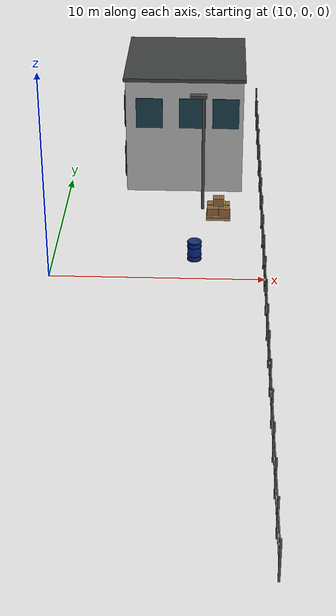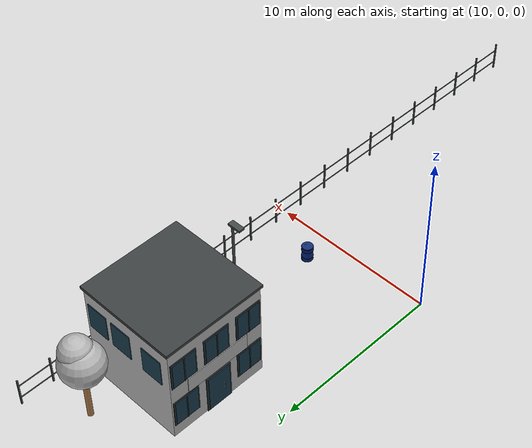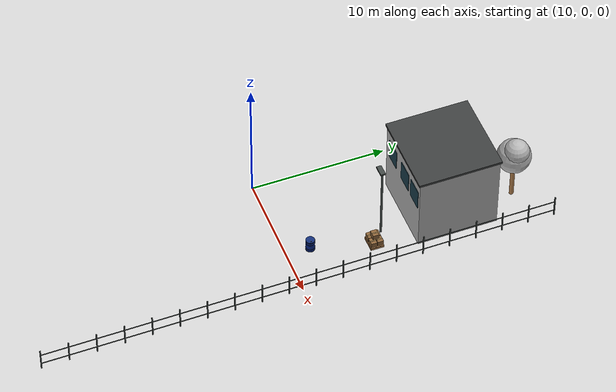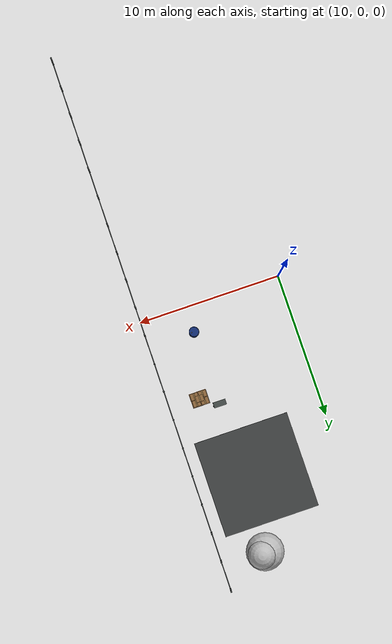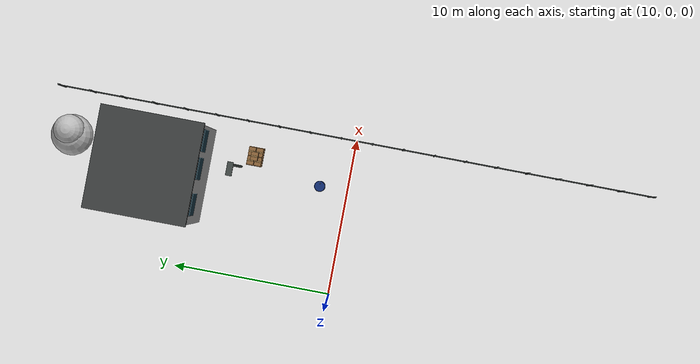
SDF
<sdf version="1.5">
 <world name="default">
  <include><uri>model://sun</uri></include>
  <model name="blue_drum_rear">
   <static>true</static>
   <pose>16.7 1.8 0.003 0 0 0</pose>
   <link name="structure">
    <visual name="drum_body">
     <pose>0 0 0.48 0 0 0</pose>
     <geometry><cylinder><radius>0.32</radius><length>0.94</length></cylinder></geometry>
     <material>
      <ambient>0.03 0.15 0.53 1</ambient>
      <diffuse>0.03 0.15 0.53 1</diffuse>
      <specular>0.04 0.04 0.04 1</specular>
     </material>
    </visual>
    <collision name="drum_body_collision">
     <pose>0 0 0.48 0 0 0</pose>
     <geometry><cylinder><radius>0.32</radius><length>0.94</length></cylinder></geometry>
     <surface><friction><ode><mu>1.0</mu><mu2>1.0</mu2></ode></friction></surface>
    </collision>
    <visual name="drum_ring_0">
     <pose>0 0 0.04 0 0 0</pose>
     <geometry><cylinder><radius>0.342</radius><length>0.026</length></cylinder></geometry>
     <material>
      <ambient>0.1 0.19 0.4 1</ambient>
      <diffuse>0.1 0.19 0.4 1</diffuse>
      <specular>0.04 0.04 0.04 1</specular>
     </material>
    </visual>
    <visual name="drum_ring_1">
     <pose>0 0 0.27 0 0 0</pose>
     <geometry><cylinder><radius>0.342</radius><length>0.026</length></cylinder></geometry>
     <material>
      <ambient>0.1 0.19 0.4 1</ambient>
      <diffuse>0.1 0.19 0.4 1</diffuse>
      <specular>0.04 0.04 0.04 1</specular>
     </material>
    </visual>
    <visual name="drum_ring_2">
     <pose>0 0 0.72 0 0 0</pose>
     <geometry><cylinder><radius>0.342</radius><length>0.026</length></cylinder></geometry>
     <material>
      <ambient>0.1 0.19 0.4 1</ambient>
      <diffuse>0.1 0.19 0.4 1</diffuse>
      <specular>0.04 0.04 0.04 1</specular>
     </material>
    </visual>
    <visual name="drum_ring_3">
     <pose>0 0 0.94 0 0 0</pose>
     <geometry><cylinder><radius>0.342</radius><length>0.026</length></cylinder></geometry>
     <material>
      <ambient>0.1 0.19 0.4 1</ambient>
      <diffuse>0.1 0.19 0.4 1</diffuse>
      <specular>0.04 0.04 0.04 1</specular>
     </material>
    </visual>
    <visual name="drum_lid">
     <pose>0 0 0.971 0 0 0</pose>
     <geometry><cylinder><radius>0.32</radius><length>0.035</length></cylinder></geometry>
     <material>
      <ambient>0.07 0.18 0.46 1</ambient>
      <diffuse>0.07 0.18 0.46 1</diffuse>
      <specular>0.04 0.04 0.04 1</specular>
     </material>
    </visual>
    <visual name="lid_bung">
     <pose>0.17 0 0.997 0 0 0</pose>
     <geometry><cylinder><radius>0.043</radius><length>0.018</length></cylinder></geometry>
     <material>
      <ambient>0.39 0.4 0.4 1</ambient>
      <diffuse>0.39 0.4 0.4 1</diffuse>
      <specular>0.04 0.04 0.04 1</specular>
     </material>
    </visual>
   </link>
  </model>
  <model name="park_office">
   <static>true</static>
   <pose>16 12 0.003 0 0 0</pose>
   <link name="structure">
    <visual name="office_shell">
     <pose>0 0 3.05 0 0 0</pose>
     <geometry><box><size>6 6 6.1</size></box></geometry>
     <material>
      <script>
       <uri>file:///home/fxxk/px4_agent/scene/materials/scripts</uri>
       <uri>file:///home/fxxk/px4_agent/scene/materials/textures</uri>
       <name>Yard/concrete</name>
      </script>
     </material>
    </visual>
    <collision name="office_shell_collision">
     <pose>0 0 3.05 0 0 0</pose>
     <geometry><box><size>6 6 6.1</size></box></geometry>
     <surface><friction><ode><mu>1.0</mu><mu2>1.0</mu2></ode></friction></surface>
    </collision>
    <visual name="office_roof">
     <pose>0 0 6.19 0 0 0</pose>
     <geometry><box><size>6.2 6.2 0.18</size></box></geometry>
     <material>
      <ambient>0.24 0.25 0.25 1</ambient>
      <diffuse>0.24 0.25 0.25 1</diffuse>
      <specular>0.04 0.04 0.04 1</specular>
     </material>
    </visual>
    <collision name="office_roof_collision">
     <pose>0 0 6.19 0 0 0</pose>
     <geometry><box><size>6.2 6.2 0.18</size></box></geometry>
     <surface><friction><ode><mu>1.0</mu><mu2>1.0</mu2></ode></friction></surface>
    </collision>
    <visual name="front_frame_0_0">
     <pose>-3.025 -2.1 1.65 0 0 0</pose>
     <geometry><box><size>0.045 1.62 1.72</size></box></geometry>
     <material>
      <ambient>0.18 0.2 0.21 1</ambient>
      <diffuse>0.18 0.2 0.21 1</diffuse>
      <specular>0.04 0.04 0.04 1</specular>
     </material>
    </visual>
    <visual name="front_glass_0_0">
     <pose>-3.056 -2.1 1.65 0 0 0</pose>
     <geometry><box><size>0.05 1.44 1.54</size></box></geometry>
     <material>
      <ambient>0.1 0.24 0.3 1</ambient>
      <diffuse>0.1 0.24 0.3 1</diffuse>
      <specular>0.04 0.04 0.04 1</specular>
     </material>
    </visual>
    <visual name="window_mullion_0_0">
     <pose>-3.086 -2.1 1.65 0 0 0</pose>
     <geometry><box><size>0.055 0.06 1.58</size></box></geometry>
     <material>
      <ambient>0.18 0.2 0.21 1</ambient>
      <diffuse>0.18 0.2 0.21 1</diffuse>
      <specular>0.04 0.04 0.04 1</specular>
     </material>
    </visual>
    <visual name="front_frame_0_2">
     <pose>-3.025 2.1 1.65 0 0 0</pose>
     <geometry><box><size>0.045 1.62 1.72</size></box></geometry>
     <material>
      <ambient>0.18 0.2 0.21 1</ambient>
      <diffuse>0.18 0.2 0.21 1</diffuse>
      <specular>0.04 0.04 0.04 1</specular>
     </material>
    </visual>
    <visual name="front_glass_0_2">
     <pose>-3.056 2.1 1.65 0 0 0</pose>
     <geometry><box><size>0.05 1.44 1.54</size></box></geometry>
     <material>
      <ambient>0.1 0.24 0.3 1</ambient>
      <diffuse>0.1 0.24 0.3 1</diffuse>
      <specular>0.04 0.04 0.04 1</specular>
     </material>
    </visual>
    <visual name="window_mullion_0_2">
     <pose>-3.086 2.1 1.65 0 0 0</pose>
     <geometry><box><size>0.055 0.06 1.58</size></box></geometry>
     <material>
      <ambient>0.18 0.2 0.21 1</ambient>
      <diffuse>0.18 0.2 0.21 1</diffuse>
      <specular>0.04 0.04 0.04 1</specular>
     </material>
    </visual>
    <visual name="front_frame_1_0">
     <pose>-3.025 -2.1 4.45 0 0 0</pose>
     <geometry><box><size>0.045 1.62 1.72</size></box></geometry>
     <material>
      <ambient>0.18 0.2 0.21 1</ambient>
      <diffuse>0.18 0.2 0.21 1</diffuse>
      <specular>0.04 0.04 0.04 1</specular>
     </material>
    </visual>
    <visual name="front_glass_1_0">
     <pose>-3.056 -2.1 4.45 0 0 0</pose>
     <geometry><box><size>0.05 1.44 1.54</size></box></geometry>
     <material>
      <ambient>0.1 0.24 0.3 1</ambient>
      <diffuse>0.1 0.24 0.3 1</diffuse>
      <specular>0.04 0.04 0.04 1</specular>
     </material>
    </visual>
    <visual name="window_mullion_1_0">
     <pose>-3.086 -2.1 4.45 0 0 0</pose>
     <geometry><box><size>0.055 0.06 1.58</size></box></geometry>
     <material>
      <ambient>0.18 0.2 0.21 1</ambient>
      <diffuse>0.18 0.2 0.21 1</diffuse>
      <specular>0.04 0.04 0.04 1</specular>
     </material>
    </visual>
    <visual name="front_frame_1_1">
     <pose>-3.025 0 4.45 0 0 0</pose>
     <geometry><box><size>0.045 1.62 1.72</size></box></geometry>
     <material>
      <ambient>0.18 0.2 0.21 1</ambient>
      <diffuse>0.18 0.2 0.21 1</diffuse>
      <specular>0.04 0.04 0.04 1</specular>
     </material>
    </visual>
    <visual name="front_glass_1_1">
     <pose>-3.056 0 4.45 0 0 0</pose>
     <geometry><box><size>0.05 1.44 1.54</size></box></geometry>
     <material>
      <ambient>0.1 0.24 0.3 1</ambient>
      <diffuse>0.1 0.24 0.3 1</diffuse>
      <specular>0.04 0.04 0.04 1</specular>
     </material>
    </visual>
    <visual name="window_mullion_1_1">
     <pose>-3.086 0 4.45 0 0 0</pose>
     <geometry><box><size>0.055 0.06 1.58</size></box></geometry>
     <material>
      <ambient>0.18 0.2 0.21 1</ambient>
      <diffuse>0.18 0.2 0.21 1</diffuse>
      <specular>0.04 0.04 0.04 1</specular>
     </material>
    </visual>
    <visual name="front_frame_1_2">
     <pose>-3.025 2.1 4.45 0 0 0</pose>
     <geometry><box><size>0.045 1.62 1.72</size></box></geometry>
     <material>
      <ambient>0.18 0.2 0.21 1</ambient>
      <diffuse>0.18 0.2 0.21 1</diffuse>
      <specular>0.04 0.04 0.04 1</specular>
     </material>
    </visual>
    <visual name="front_glass_1_2">
     <pose>-3.056 2.1 4.45 0 0 0</pose>
     <geometry><box><size>0.05 1.44 1.54</size></box></geometry>
     <material>
      <ambient>0.1 0.24 0.3 1</ambient>
      <diffuse>0.1 0.24 0.3 1</diffuse>
      <specular>0.04 0.04 0.04 1</specular>
     </material>
    </visual>
    <visual name="window_mullion_1_2">
     <pose>-3.086 2.1 4.45 0 0 0</pose>
     <geometry><box><size>0.055 0.06 1.58</size></box></geometry>
     <material>
      <ambient>0.18 0.2 0.21 1</ambient>
      <diffuse>0.18 0.2 0.21 1</diffuse>
      <specular>0.04 0.04 0.04 1</specular>
     </material>
    </visual>
    <visual name="entrance_frame">
     <pose>-3.036 0 1.225 0 0 0</pose>
     <geometry><box><size>0.06 1.6 2.45</size></box></geometry>
     <material>
      <ambient>0.18 0.2 0.21 1</ambient>
      <diffuse>0.18 0.2 0.21 1</diffuse>
      <specular>0.04 0.04 0.04 1</specular>
     </material>
    </visual>
    <visual name="glass_entrance">
     <pose>-3.076 0 1.225 0 0 0</pose>
     <geometry><box><size>0.065 1.4 2.25</size></box></geometry>
     <material>
      <ambient>0.1 0.24 0.3 1</ambient>
      <diffuse>0.1 0.24 0.3 1</diffuse>
      <specular>0.04 0.04 0.04 1</specular>
     </material>
    </visual>
    <visual name="door_handle">
     <pose>-3.13 -0.32 1.15 0 0 0</pose>
     <geometry><box><size>0.07 0.028 0.4</size></box></geometry>
     <material>
      <ambient>0.63 0.65 0.65 1</ambient>
      <diffuse>0.63 0.65 0.65 1</diffuse>
      <specular>0.04 0.04 0.04 1</specular>
     </material>
    </visual>
    <visual name="office_name">
     <pose>-3.07 0 3.1 0 0 0</pose>
     <geometry><box><size>0.04 3.9 0.98</size></box></geometry>
     <material>
      <script>
       <uri>file:///home/fxxk/px4_agent/scene/materials/scripts</uri>
       <uri>file:///home/fxxk/px4_agent/scene/materials/textures</uri>
       <name>Yard/office_sign</name>
      </script>
     </material>
    </visual>
    <visual name="side_window_-1_0">
     <pose>-1.8 -3.029 4.4 0 0 0</pose>
     <geometry><box><size>1.35 0.045 1.6</size></box></geometry>
     <material>
      <ambient>0.1 0.24 0.3 1</ambient>
      <diffuse>0.1 0.24 0.3 1</diffuse>
      <specular>0.04 0.04 0.04 1</specular>
     </material>
    </visual>
    <visual name="side_window_-1_1">
     <pose>0.4 -3.029 4.4 0 0 0</pose>
     <geometry><box><size>1.35 0.045 1.6</size></box></geometry>
     <material>
      <ambient>0.1 0.24 0.3 1</ambient>
      <diffuse>0.1 0.24 0.3 1</diffuse>
      <specular>0.04 0.04 0.04 1</specular>
     </material>
    </visual>
    <visual name="side_window_-1_2">
     <pose>2.1 -3.029 4.4 0 0 0</pose>
     <geometry><box><size>1.35 0.045 1.6</size></box></geometry>
     <material>
      <ambient>0.1 0.24 0.3 1</ambient>
      <diffuse>0.1 0.24 0.3 1</diffuse>
      <specular>0.04 0.04 0.04 1</specular>
     </material>
    </visual>
    <visual name="side_window_1_0">
     <pose>-1.8 3.029 4.4 0 0 0</pose>
     <geometry><box><size>1.35 0.045 1.6</size></box></geometry>
     <material>
      <ambient>0.1 0.24 0.3 1</ambient>
      <diffuse>0.1 0.24 0.3 1</diffuse>
      <specular>0.04 0.04 0.04 1</specular>
     </material>
    </visual>
    <visual name="side_window_1_1">
     <pose>0.4 3.029 4.4 0 0 0</pose>
     <geometry><box><size>1.35 0.045 1.6</size></box></geometry>
     <material>
      <ambient>0.1 0.24 0.3 1</ambient>
      <diffuse>0.1 0.24 0.3 1</diffuse>
      <specular>0.04 0.04 0.04 1</specular>
     </material>
    </visual>
    <visual name="side_window_1_2">
     <pose>2.1 3.029 4.4 0 0 0</pose>
     <geometry><box><size>1.35 0.045 1.6</size></box></geometry>
     <material>
      <ambient>0.1 0.24 0.3 1</ambient>
      <diffuse>0.1 0.24 0.3 1</diffuse>
      <specular>0.04 0.04 0.04 1</specular>
     </material>
    </visual>
   </link>
  </model>
  <model name="cartons_pallet_2">
   <static>true</static>
   <pose>17.8 6.2 0.003 0 0 0</pose>
   <link name="structure">
    <visual name="pallet_collision_base">
     <pose>0 0 0.075 0 0 0</pose>
     <geometry><box><size>1.2 1 0.15</size></box></geometry>
     <material>
      <script>
       <uri>file:///home/fxxk/px4_agent/scene/materials/scripts</uri>
       <uri>file:///home/fxxk/px4_agent/scene/materials/textures</uri>
       <name>Yard/wood</name>
      </script>
     </material>
    </visual>
    <collision name="pallet_collision_base_collision">
     <pose>0 0 0.075 0 0 0</pose>
     <geometry><box><size>1.2 1 0.15</size></box></geometry>
     <surface><friction><ode><mu>1.0</mu><mu2>1.0</mu2></ode></friction></surface>
    </collision>
    <visual name="pallet_slat_0">
     <pose>0 -0.43 0.168 0 0 0</pose>
     <geometry><box><size>1.2 0.13 0.035</size></box></geometry>
     <material>
      <script>
       <uri>file:///home/fxxk/px4_agent/scene/materials/scripts</uri>
       <uri>file:///home/fxxk/px4_agent/scene/materials/textures</uri>
       <name>Yard/wood</name>
      </script>
     </material>
    </visual>
    <visual name="pallet_slat_1">
     <pose>0 -0.215 0.168 0 0 0</pose>
     <geometry><box><size>1.2 0.13 0.035</size></box></geometry>
     <material>
      <script>
       <uri>file:///home/fxxk/px4_agent/scene/materials/scripts</uri>
       <uri>file:///home/fxxk/px4_agent/scene/materials/textures</uri>
       <name>Yard/wood</name>
      </script>
     </material>
    </visual>
    <visual name="pallet_slat_2">
     <pose>0 0 0.168 0 0 0</pose>
     <geometry><box><size>1.2 0.13 0.035</size></box></geometry>
     <material>
      <script>
       <uri>file:///home/fxxk/px4_agent/scene/materials/scripts</uri>
       <uri>file:///home/fxxk/px4_agent/scene/materials/textures</uri>
       <name>Yard/wood</name>
      </script>
     </material>
    </visual>
    <visual name="pallet_slat_3">
     <pose>0 0.215 0.168 0 0 0</pose>
     <geometry><box><size>1.2 0.13 0.035</size></box></geometry>
     <material>
      <script>
       <uri>file:///home/fxxk/px4_agent/scene/materials/scripts</uri>
       <uri>file:///home/fxxk/px4_agent/scene/materials/textures</uri>
       <name>Yard/wood</name>
      </script>
     </material>
    </visual>
    <visual name="pallet_slat_4">
     <pose>0 0.43 0.168 0 0 0</pose>
     <geometry><box><size>1.2 0.13 0.035</size></box></geometry>
     <material>
      <script>
       <uri>file:///home/fxxk/px4_agent/scene/materials/scripts</uri>
       <uri>file:///home/fxxk/px4_agent/scene/materials/textures</uri>
       <name>Yard/wood</name>
      </script>
     </material>
    </visual>
    <visual name="carton_0">
     <pose>-0.29 -0.24 0.43 0 0 0</pose>
     <geometry><box><size>0.54 0.44 0.4</size></box></geometry>
     <material>
      <ambient>0.56 0.4 0.23 1</ambient>
      <diffuse>0.56 0.4 0.23 1</diffuse>
      <specular>0.04 0.04 0.04 1</specular>
     </material>
    </visual>
    <collision name="carton_0_collision">
     <pose>-0.29 -0.24 0.43 0 0 0</pose>
     <geometry><box><size>0.54 0.44 0.4</size></box></geometry>
     <surface><friction><ode><mu>1.0</mu><mu2>1.0</mu2></ode></friction></surface>
    </collision>
    <visual name="packing_tape_0">
     <pose>-0.29 -0.24 0.635 0 0 0</pose>
     <geometry><box><size>0.075 0.442 0.008</size></box></geometry>
     <material>
      <ambient>0.72 0.58 0.36 1</ambient>
      <diffuse>0.72 0.58 0.36 1</diffuse>
      <specular>0.04 0.04 0.04 1</specular>
     </material>
    </visual>
    <visual name="carton_1">
     <pose>0.29 -0.24 0.43 0 0 0</pose>
     <geometry><box><size>0.54 0.44 0.4</size></box></geometry>
     <material>
      <ambient>0.56 0.4 0.23 1</ambient>
      <diffuse>0.56 0.4 0.23 1</diffuse>
      <specular>0.04 0.04 0.04 1</specular>
     </material>
    </visual>
    <collision name="carton_1_collision">
     <pose>0.29 -0.24 0.43 0 0 0</pose>
     <geometry><box><size>0.54 0.44 0.4</size></box></geometry>
     <surface><friction><ode><mu>1.0</mu><mu2>1.0</mu2></ode></friction></surface>
    </collision>
    <visual name="packing_tape_1">
     <pose>0.29 -0.24 0.635 0 0 0</pose>
     <geometry><box><size>0.075 0.442 0.008</size></box></geometry>
     <material>
      <ambient>0.72 0.58 0.36 1</ambient>
      <diffuse>0.72 0.58 0.36 1</diffuse>
      <specular>0.04 0.04 0.04 1</specular>
     </material>
    </visual>
    <visual name="carton_2">
     <pose>-0.29 0.24 0.43 0 0 0</pose>
     <geometry><box><size>0.54 0.44 0.4</size></box></geometry>
     <material>
      <ambient>0.56 0.4 0.23 1</ambient>
      <diffuse>0.56 0.4 0.23 1</diffuse>
      <specular>0.04 0.04 0.04 1</specular>
     </material>
    </visual>
    <collision name="carton_2_collision">
     <pose>-0.29 0.24 0.43 0 0 0</pose>
     <geometry><box><size>0.54 0.44 0.4</size></box></geometry>
     <surface><friction><ode><mu>1.0</mu><mu2>1.0</mu2></ode></friction></surface>
    </collision>
    <visual name="packing_tape_2">
     <pose>-0.29 0.24 0.635 0 0 0</pose>
     <geometry><box><size>0.075 0.442 0.008</size></box></geometry>
     <material>
      <ambient>0.72 0.58 0.36 1</ambient>
      <diffuse>0.72 0.58 0.36 1</diffuse>
      <specular>0.04 0.04 0.04 1</specular>
     </material>
    </visual>
    <visual name="carton_3">
     <pose>0.29 0.24 0.43 0 0 0</pose>
     <geometry><box><size>0.54 0.44 0.4</size></box></geometry>
     <material>
      <ambient>0.56 0.4 0.23 1</ambient>
      <diffuse>0.56 0.4 0.23 1</diffuse>
      <specular>0.04 0.04 0.04 1</specular>
     </material>
    </visual>
    <collision name="carton_3_collision">
     <pose>0.29 0.24 0.43 0 0 0</pose>
     <geometry><box><size>0.54 0.44 0.4</size></box></geometry>
     <surface><friction><ode><mu>1.0</mu><mu2>1.0</mu2></ode></friction></surface>
    </collision>
    <visual name="packing_tape_3">
     <pose>0.29 0.24 0.635 0 0 0</pose>
     <geometry><box><size>0.075 0.442 0.008</size></box></geometry>
     <material>
      <ambient>0.72 0.58 0.36 1</ambient>
      <diffuse>0.72 0.58 0.36 1</diffuse>
      <specular>0.04 0.04 0.04 1</specular>
     </material>
    </visual>
    <visual name="carton_4">
     <pose>0 0 0.87 0 0 0</pose>
     <geometry><box><size>0.54 0.44 0.4</size></box></geometry>
     <material>
      <ambient>0.56 0.4 0.23 1</ambient>
      <diffuse>0.56 0.4 0.23 1</diffuse>
      <specular>0.04 0.04 0.04 1</specular>
     </material>
    </visual>
    <collision name="carton_4_collision">
     <pose>0 0 0.87 0 0 0</pose>
     <geometry><box><size>0.54 0.44 0.4</size></box></geometry>
     <surface><friction><ode><mu>1.0</mu><mu2>1.0</mu2></ode></friction></surface>
    </collision>
    <visual name="packing_tape_4">
     <pose>0 0 1.075 0 0 0</pose>
     <geometry><box><size>0.075 0.442 0.008</size></box></geometry>
     <material>
      <ambient>0.72 0.58 0.36 1</ambient>
      <diffuse>0.72 0.58 0.36 1</diffuse>
      <specular>0.04 0.04 0.04 1</specular>
     </material>
    </visual>
   </link>
  </model>
  <model name="yard_tree_6">
   <static>true</static>
   <pose>17 17 0.003 0 0 0</pose>
   <link name="structure">
    <visual name="trunk">
     <pose>0 0 1.6 0 0 0</pose>
     <geometry><cylinder><radius>0.16</radius><length>3.2</length></cylinder></geometry>
     <material>
      <script>
       <uri>file:///home/fxxk/px4_agent/scene/materials/scripts</uri>
       <uri>file:///home/fxxk/px4_agent/scene/materials/textures</uri>
       <name>Yard/wood</name>
      </script>
     </material>
    </visual>
    <collision name="trunk_collision">
     <pose>0 0 1.6 0 0 0</pose>
     <geometry><cylinder><radius>0.16</radius><length>3.2</length></cylinder></geometry>
     <surface><friction><ode><mu>1.0</mu><mu2>1.0</mu2></ode></friction></surface>
    </collision>
    <visual name="crown">
     <pose>0 0 3.95 0 0 0</pose>
     <geometry><sphere><radius>1.25</radius></sphere></geometry>
     <material>
      <script>
       <uri>file:///home/fxxk/px4_agent/scene/materials/scripts</uri>
       <uri>file:///home/fxxk/px4_agent/scene/materials/textures</uri>
       <name>Yard/foliage</name>
      </script>
     </material>
    </visual>
    <collision name="crown_collision">
     <pose>0 0 3.95 0 0 0</pose>
     <geometry><sphere><radius>1.25</radius></sphere></geometry>
     <surface><friction><ode><mu>1.0</mu><mu2>1.0</mu2></ode></friction></surface>
    </collision>
    <visual name="crown_top">
     <pose>0.25 0.06 4.6 0 0 0</pose>
     <geometry><sphere><radius>0.9375</radius></sphere></geometry>
     <material>
      <script>
       <uri>file:///home/fxxk/px4_agent/scene/materials/scripts</uri>
       <uri>file:///home/fxxk/px4_agent/scene/materials/textures</uri>
       <name>Yard/foliage</name>
      </script>
     </material>
    </visual>
   </link>
  </model>
  <model name="street_lamp_north">
   <static>true</static>
   <pose>17 7 0.003 0 0 0</pose>
   <link name="structure">
    <visual name="lamp_pole">
     <pose>0 0 3.075 0 0 0</pose>
     <geometry><cylinder><radius>0.075</radius><length>6.15</length></cylinder></geometry>
     <material>
      <ambient>0.26 0.29 0.28 1</ambient>
      <diffuse>0.26 0.29 0.28 1</diffuse>
      <specular>0.04 0.04 0.04 1</specular>
     </material>
    </visual>
    <collision name="lamp_pole_collision">
     <pose>0 0 3.075 0 0 0</pose>
     <geometry><cylinder><radius>0.075</radius><length>6.15</length></cylinder></geometry>
     <surface><friction><ode><mu>1.0</mu><mu2>1.0</mu2></ode></friction></surface>
    </collision>
    <visual name="lamp_head">
     <pose>-0.26 0 6.17 0 0 0</pose>
     <geometry><box><size>0.82 0.36 0.13</size></box></geometry>
     <material>
      <ambient>0.26 0.29 0.28 1</ambient>
      <diffuse>0.26 0.29 0.28 1</diffuse>
      <specular>0.04 0.04 0.04 1</specular>
     </material>
    </visual>
    <visual name="lamp_glass">
     <pose>-0.26 0 6.098 0 0 0</pose>
     <geometry><box><size>0.67 0.28 0.015</size></box></geometry>
     <cast_shadows>false</cast_shadows>
     <material>
      <ambient>0.82 0.82 0.66 1</ambient>
      <diffuse>0.82 0.82 0.66 1</diffuse>
      <specular>0.04 0.04 0.04 1</specular>
     </material>
    </visual>
   </link>
  </model>
  <model name="east_fence">
   <static>true</static>
   <pose>19.94 0 0.003 0 0 0</pose>
   <link name="structure">
    <collision name="fence_collision">
     <pose>0 0 .9 0 0 0</pose>
     <geometry><box><size>0.12 38 1.8</size></box></geometry>
    </collision>
    <visual name="fence_post_0">
     <pose>0 -19 0.9 0 0 0</pose>
     <geometry><box><size>0.08 0.08 1.8</size></box></geometry>
     <material>
      <ambient>0.31 0.34 0.33 1</ambient>
      <diffuse>0.31 0.34 0.33 1</diffuse>
      <specular>0.04 0.04 0.04 1</specular>
     </material>
    </visual>
    <visual name="fence_post_1">
     <pose>0 -17 0.9 0 0 0</pose>
     <geometry><box><size>0.08 0.08 1.8</size></box></geometry>
     <material>
      <ambient>0.31 0.34 0.33 1</ambient>
      <diffuse>0.31 0.34 0.33 1</diffuse>
      <specular>0.04 0.04 0.04 1</specular>
     </material>
    </visual>
    <visual name="fence_post_2">
     <pose>0 -15 0.9 0 0 0</pose>
     <geometry><box><size>0.08 0.08 1.8</size></box></geometry>
     <material>
      <ambient>0.31 0.34 0.33 1</ambient>
      <diffuse>0.31 0.34 0.33 1</diffuse>
      <specular>0.04 0.04 0.04 1</specular>
     </material>
    </visual>
    <visual name="fence_post_3">
     <pose>0 -13 0.9 0 0 0</pose>
     <geometry><box><size>0.08 0.08 1.8</size></box></geometry>
     <material>
      <ambient>0.31 0.34 0.33 1</ambient>
      <diffuse>0.31 0.34 0.33 1</diffuse>
      <specular>0.04 0.04 0.04 1</specular>
     </material>
    </visual>
    <visual name="fence_post_4">
     <pose>0 -11 0.9 0 0 0</pose>
     <geometry><box><size>0.08 0.08 1.8</size></box></geometry>
     <material>
      <ambient>0.31 0.34 0.33 1</ambient>
      <diffuse>0.31 0.34 0.33 1</diffuse>
      <specular>0.04 0.04 0.04 1</specular>
     </material>
    </visual>
    <visual name="fence_post_5">
     <pose>0 -9 0.9 0 0 0</pose>
     <geometry><box><size>0.08 0.08 1.8</size></box></geometry>
     <material>
      <ambient>0.31 0.34 0.33 1</ambient>
      <diffuse>0.31 0.34 0.33 1</diffuse>
      <specular>0.04 0.04 0.04 1</specular>
     </material>
    </visual>
    <visual name="fence_post_6">
     <pose>0 -7 0.9 0 0 0</pose>
     <geometry><box><size>0.08 0.08 1.8</size></box></geometry>
     <material>
      <ambient>0.31 0.34 0.33 1</ambient>
      <diffuse>0.31 0.34 0.33 1</diffuse>
      <specular>0.04 0.04 0.04 1</specular>
     </material>
    </visual>
    <visual name="fence_post_7">
     <pose>0 -5 0.9 0 0 0</pose>
     <geometry><box><size>0.08 0.08 1.8</size></box></geometry>
     <material>
      <ambient>0.31 0.34 0.33 1</ambient>
      <diffuse>0.31 0.34 0.33 1</diffuse>
      <specular>0.04 0.04 0.04 1</specular>
     </material>
    </visual>
    <visual name="fence_post_8">
     <pose>0 -3 0.9 0 0 0</pose>
     <geometry><box><size>0.08 0.08 1.8</size></box></geometry>
     <material>
      <ambient>0.31 0.34 0.33 1</ambient>
      <diffuse>0.31 0.34 0.33 1</diffuse>
      <specular>0.04 0.04 0.04 1</specular>
     </material>
    </visual>
    <visual name="fence_post_9">
     <pose>0 -1 0.9 0 0 0</pose>
     <geometry><box><size>0.08 0.08 1.8</size></box></geometry>
     <material>
      <ambient>0.31 0.34 0.33 1</ambient>
      <diffuse>0.31 0.34 0.33 1</diffuse>
      <specular>0.04 0.04 0.04 1</specular>
     </material>
    </visual>
    <visual name="fence_post_10">
     <pose>0 1 0.9 0 0 0</pose>
     <geometry><box><size>0.08 0.08 1.8</size></box></geometry>
     <material>
      <ambient>0.31 0.34 0.33 1</ambient>
      <diffuse>0.31 0.34 0.33 1</diffuse>
      <specular>0.04 0.04 0.04 1</specular>
     </material>
    </visual>
    <visual name="fence_post_11">
     <pose>0 3 0.9 0 0 0</pose>
     <geometry><box><size>0.08 0.08 1.8</size></box></geometry>
     <material>
      <ambient>0.31 0.34 0.33 1</ambient>
      <diffuse>0.31 0.34 0.33 1</diffuse>
      <specular>0.04 0.04 0.04 1</specular>
     </material>
    </visual>
    <visual name="fence_post_12">
     <pose>0 5 0.9 0 0 0</pose>
     <geometry><box><size>0.08 0.08 1.8</size></box></geometry>
     <material>
      <ambient>0.31 0.34 0.33 1</ambient>
      <diffuse>0.31 0.34 0.33 1</diffuse>
      <specular>0.04 0.04 0.04 1</specular>
     </material>
    </visual>
    <visual name="fence_post_13">
     <pose>0 7 0.9 0 0 0</pose>
     <geometry><box><size>0.08 0.08 1.8</size></box></geometry>
     <material>
      <ambient>0.31 0.34 0.33 1</ambient>
      <diffuse>0.31 0.34 0.33 1</diffuse>
      <specular>0.04 0.04 0.04 1</specular>
     </material>
    </visual>
    <visual name="fence_post_14">
     <pose>0 9 0.9 0 0 0</pose>
     <geometry><box><size>0.08 0.08 1.8</size></box></geometry>
     <material>
      <ambient>0.31 0.34 0.33 1</ambient>
      <diffuse>0.31 0.34 0.33 1</diffuse>
      <specular>0.04 0.04 0.04 1</specular>
     </material>
    </visual>
    <visual name="fence_post_15">
     <pose>0 11 0.9 0 0 0</pose>
     <geometry><box><size>0.08 0.08 1.8</size></box></geometry>
     <material>
      <ambient>0.31 0.34 0.33 1</ambient>
      <diffuse>0.31 0.34 0.33 1</diffuse>
      <specular>0.04 0.04 0.04 1</specular>
     </material>
    </visual>
    <visual name="fence_post_16">
     <pose>0 13 0.9 0 0 0</pose>
     <geometry><box><size>0.08 0.08 1.8</size></box></geometry>
     <material>
      <ambient>0.31 0.34 0.33 1</ambient>
      <diffuse>0.31 0.34 0.33 1</diffuse>
      <specular>0.04 0.04 0.04 1</specular>
     </material>
    </visual>
    <visual name="fence_post_17">
     <pose>0 15 0.9 0 0 0</pose>
     <geometry><box><size>0.08 0.08 1.8</size></box></geometry>
     <material>
      <ambient>0.31 0.34 0.33 1</ambient>
      <diffuse>0.31 0.34 0.33 1</diffuse>
      <specular>0.04 0.04 0.04 1</specular>
     </material>
    </visual>
    <visual name="fence_post_18">
     <pose>0 17 0.9 0 0 0</pose>
     <geometry><box><size>0.08 0.08 1.8</size></box></geometry>
     <material>
      <ambient>0.31 0.34 0.33 1</ambient>
      <diffuse>0.31 0.34 0.33 1</diffuse>
      <specular>0.04 0.04 0.04 1</specular>
     </material>
    </visual>
    <visual name="fence_post_19">
     <pose>0 19 0.9 0 0 0</pose>
     <geometry><box><size>0.08 0.08 1.8</size></box></geometry>
     <material>
      <ambient>0.31 0.34 0.33 1</ambient>
      <diffuse>0.31 0.34 0.33 1</diffuse>
      <specular>0.04 0.04 0.04 1</specular>
     </material>
    </visual>
    <visual name="fence_rail_0">
     <pose>0 0 0.48 0 0 0</pose>
     <geometry><box><size>0.04 38 0.055</size></box></geometry>
     <material>
      <ambient>0.35 0.38 0.37 1</ambient>
      <diffuse>0.35 0.38 0.37 1</diffuse>
      <specular>0.04 0.04 0.04 1</specular>
     </material>
    </visual>
    <visual name="fence_rail_1">
     <pose>0 0 1.35 0 0 0</pose>
     <geometry><box><size>0.04 38 0.055</size></box></geometry>
     <material>
      <ambient>0.35 0.38 0.37 1</ambient>
      <diffuse>0.35 0.38 0.37 1</diffuse>
      <specular>0.04 0.04 0.04 1</specular>
     </material>
    </visual>
   </link>
  </model>
 </world>
</sdf>
